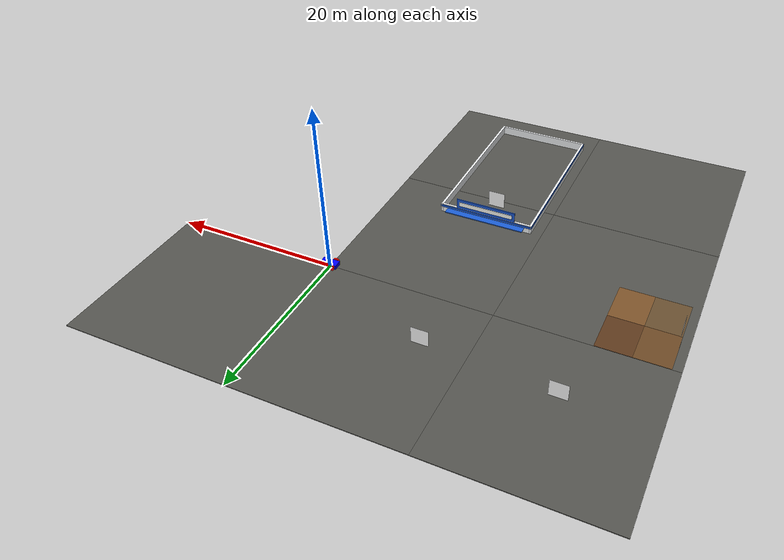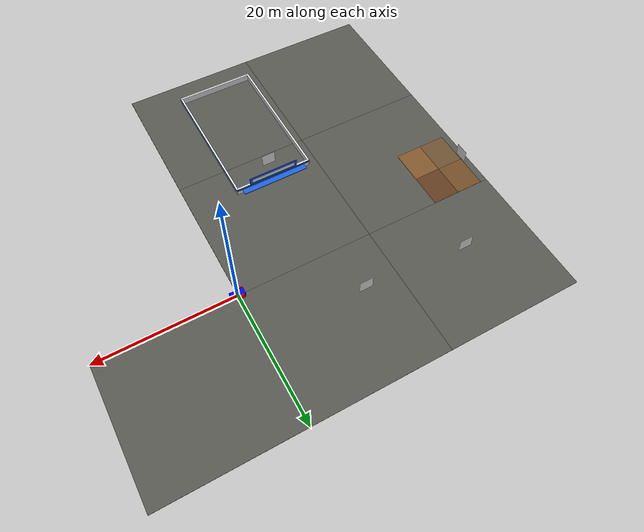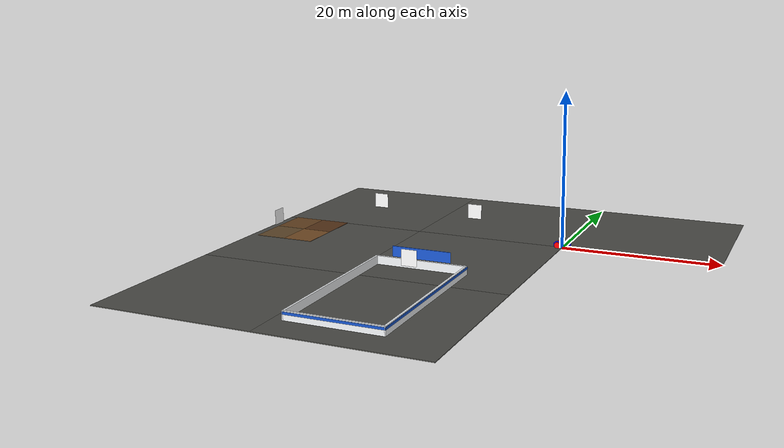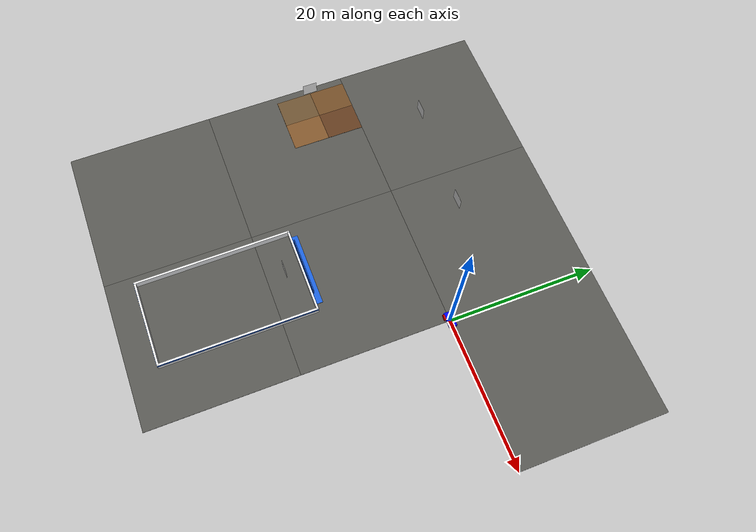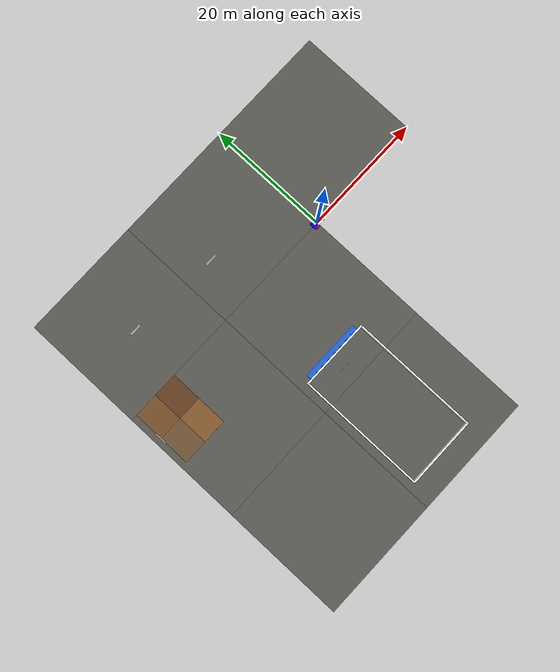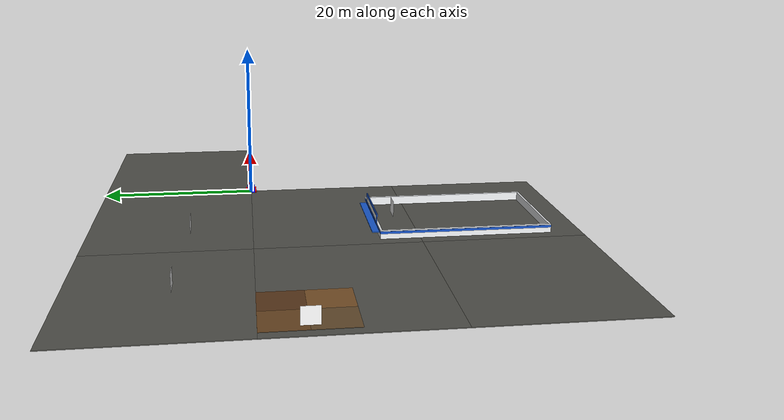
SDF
<sdf version="1.9">
 <world name="default">
  <model name="vehicle_blue" canonical_link="chassis">
   <pose relative_to="world">0.0 0.0 0 0 0 0</pose>
   <frame name="lidar_frame" attached_to="chassis"><pose>0.85 0 0.55 0 0 0</pose></frame>
   <link name="chassis">
    <pose relative_to="__model__">0.0 0.0 0.4 0 0 0</pose>
    <inertial>
     <mass>1.14395</mass>
     <inertia>
      <ixx>0.095329</ixx>
      <ixy>0</ixy>
      <ixz>0</ixz>
      <iyy>0.381317</iyy>
      <iyz>0</iyz>
      <izz>0.476646</izz>
     </inertia>
    </inertial>
    <visual name="visual">
     <geometry><box><size>2.0 1.0 0.5</size></box></geometry>
     <material>
      <ambient>0.0 0.0 1.0 1</ambient>
      <diffuse>0.0 0.0 1.0 1</diffuse>
      <specular>0.0 0.0 1.0 1</specular>
     </material>
    </visual>
    <collision name="collision"><geometry><box><size>2.0 1.0 0.5</size></box></geometry></collision>
    <sensor name="gpu_lidar" type="gpu_lidar">
     <pose relative_to="lidar_frame">0 0 0 0 0 0</pose>
     <topic>scan</topic>
     <update_rate>10</update_rate>
     <ray>
      <scan>
       <horizontal>
        <samples>360</samples>
        <resolution>1</resolution>
        <min_angle>-3.14159</min_angle>
        <max_angle>3.14159</max_angle>
       </horizontal>
       <vertical>
        <samples>1</samples>
        <resolution>0.01</resolution>
        <min_angle>0</min_angle>
        <max_angle>0</max_angle>
       </vertical>
      </scan>
      <range><min>0.08</min><max>30.0</max><resolution>0.01</resolution></range>
     </ray>
     <always_on>1</always_on>
     <visualize>true</visualize>
    </sensor>
    <sensor name="front_cam" type="camera">
     <pose>0.9  0  0.0  0  -0.10  0</pose>
     <update_rate>30</update_rate>
     <camera>
      <horizontal_fov>1.05</horizontal_fov>
      <image><width>1280</width><height>720</height><format>R8G8B8</format></image>
     </camera>
     <always_on>true</always_on>
    </sensor>
    <sensor name="imu_sensor" type="imu">
     <always_on>1</always_on>
     <update_rate>50</update_rate>
     <visualize>true</visualize>
     <topic>imu</topic>
    </sensor>
   </link>
   <link name="left_wheel">
    <pose relative_to="chassis">-0.5 0.6 0 -1.5707 0 0</pose>
    <inertial>
     <mass>1</mass>
     <inertia><ixx>0.043333</ixx><ixy>0</ixy><ixz>0</ixz><iyy>0.043333</iyy><iyz>0</iyz><izz>0.08</izz></inertia>
    </inertial>
    <visual name="visual">
     <geometry><cylinder><radius>0.4</radius><length>0.2</length></cylinder></geometry>
     <material>
      <ambient>1.0 0.0 0.0 1</ambient>
      <diffuse>1.0 0.0 0.0 1</diffuse>
      <specular>1.0 0.0 0.0 1</specular>
     </material>
    </visual>
    <collision name="collision">
     <geometry><cylinder><radius>0.4</radius><length>0.2</length></cylinder></geometry>
    </collision>
   </link>
   <link name="right_wheel">
    <pose relative_to="chassis">-0.5 -0.6 0 -1.5707 0 0</pose>
    <inertial>
     <mass>1</mass>
     <inertia><ixx>0.043333</ixx><ixy>0</ixy><ixz>0</ixz><iyy>0.043333</iyy><iyz>0</iyz><izz>0.08</izz></inertia>
    </inertial>
    <visual name="visual">
     <geometry><cylinder><radius>0.4</radius><length>0.2</length></cylinder></geometry>
     <material>
      <ambient>1.0 0.0 0.0 1</ambient>
      <diffuse>1.0 0.0 0.0 1</diffuse>
      <specular>1.0 0.0 0.0 1</specular>
     </material>
    </visual>
    <collision name="collision">
     <geometry><cylinder><radius>0.4</radius><length>0.2</length></cylinder></geometry>
    </collision>
   </link>
   <frame name="caster_frame" attached_to="chassis"><pose>0.8 0 -0.2 0 0 0</pose></frame>
   <link name="caster">
    <pose relative_to="caster_frame"/>
    <inertial>
     <mass>1</mass>
     <inertia><ixx>0.016</ixx><ixy>0</ixy><ixz>0</ixz><iyy>0.016</iyy><iyz>0</iyz><izz>0.016</izz></inertia>
    </inertial>
    <visual name="visual">
     <geometry><sphere><radius>0.2</radius></sphere></geometry>
     <material>
      <ambient>0.0 1 0.0 1</ambient>
      <diffuse>0.0 1 0.0 1</diffuse>
      <specular>0.0 1 0.0 1</specular>
     </material>
    </visual>
    <collision name="collision"><geometry><sphere><radius>0.2</radius></sphere></geometry></collision>
   </link>
   <joint name="left_wheel_joint" type="revolute">
    <pose relative_to="left_wheel"/>
    <parent>chassis</parent>
    <child>left_wheel</child>
    <axis>
     <xyz expressed_in="__model__">0 1 0</xyz>
     <limit><lower>-1.79769e+308</lower><upper>1.79769e+308</upper></limit>
    </axis>
   </joint>
   <joint name="right_wheel_joint" type="revolute">
    <pose relative_to="right_wheel"/>
    <parent>chassis</parent>
    <child>right_wheel</child>
    <axis>
     <xyz expressed_in="__model__">0 1 0</xyz>
     <limit><lower>-1.79769e+308</lower><upper>1.79769e+308</upper></limit>
    </axis>
   </joint>
   <joint name="caster_wheel" type="ball"><parent>chassis</parent><child>caster</child></joint>
   <plugin filename="gz-sim-diff-drive-system" name="gz::sim::systems::DiffDrive">
    <left_joint>left_wheel_joint</left_joint>
    <right_joint>right_wheel_joint</right_joint>
    <wheel_separation>1.2</wheel_separation>
    <wheel_radius>0.4</wheel_radius>
    <odom_publish_frequency>30.0</odom_publish_frequency>
    <topic>cmd_vel</topic>
    <max_linear_velocity>3.0</max_linear_velocity>
    <max_angular_velocity>3.0</max_angular_velocity>
    <max_linear_acceleration>5.0</max_linear_acceleration>
    <max_angular_acceleration>5.0</max_angular_acceleration>
   </plugin>
   <plugin name="gz::sim::systems::JointStatePublisher" filename="gz-sim-joint-state-publisher-system">
    <publish_rate>50</publish_rate>
   </plugin>
   <plugin filename="ignition-gazebo-sensors-system" name="ignition::gazebo::systems::Sensors">
    <render_engine>ogre2</render_engine>
   </plugin>
  </model>
  <include><name>qr1_docking_station</name><uri>model://qr1</uri><pose>-38.85 -5 1.5 0 1.5708 0</pose></include>
  <include><name>qr2_house_5</name><uri>model://qr2</uri><pose>-30 8.5 1.5 1.5708 0 0</pose></include>
  <include><name>qr3_house_4</name><uri>model://qr3</uri><pose>-15 7.5 1.5 1.5708 0 0</pose></include>
  <include><name>qr8_gas_station</name><uri>model://qr8</uri><pose>-13.3 -17.5 2.0 -1.5708 0 0</pose></include>
  <model name="asphalt_plane">
   <static>1</static>
   <link name="link">
    <collision name="collision"><geometry><box><size>20 20 0.1</size></box></geometry></collision>
    <visual name="visual">
     <cast_shadows>0</cast_shadows>
     <geometry><box><size>20 20 0.1</size></box></geometry>
     <material>
      <ambient>0.18 0.18 0.17 1</ambient>
      <diffuse>0.32 0.32 0.30 1</diffuse>
      <specular>0.05 0.05 0.05 1</specular>
      <emissive>0 0 0 1</emissive>
     </material>
    </visual>
    <velocity_decay><linear>0</linear><angular>0</angular></velocity_decay>
   </link>
   <pose>10 10 0 0 0 0</pose>
  </model>
  <model name="asphalt_plane_1">
   <static>1</static>
   <link name="link">
    <collision name="collision"><geometry><box><size>20 20 0.1</size></box></geometry></collision>
    <visual name="visual">
     <cast_shadows>0</cast_shadows>
     <geometry><box><size>20 20 0.1</size></box></geometry>
     <material>
      <ambient>0.18 0.18 0.17 1</ambient>
      <diffuse>0.32 0.32 0.30 1</diffuse>
      <specular>0.05 0.05 0.05 1</specular>
      <emissive>0 0 0 1</emissive>
     </material>
    </visual>
    <velocity_decay><linear>0</linear><angular>0</angular></velocity_decay>
   </link>
   <pose>-10 10 0 0 0 0</pose>
  </model>
  <model name="asphalt_plane_2">
   <static>1</static>
   <link name="link">
    <collision name="collision"><geometry><box><size>20 20 0.1</size></box></geometry></collision>
    <visual name="visual">
     <cast_shadows>0</cast_shadows>
     <geometry><box><size>20 20 0.1</size></box></geometry>
     <material>
      <ambient>0.18 0.18 0.17 1</ambient>
      <diffuse>0.32 0.32 0.30 1</diffuse>
      <specular>0.05 0.05 0.05 1</specular>
      <emissive>0 0 0 1</emissive>
     </material>
    </visual>
    <velocity_decay><linear>0</linear><angular>0</angular></velocity_decay>
   </link>
   <pose>-10 -10 0 0 0 0</pose>
  </model>
  <model name="asphalt_plane_3">
   <static>1</static>
   <link name="link">
    <collision name="collision"><geometry><box><size>20 20 0.1</size></box></geometry></collision>
    <visual name="visual">
     <cast_shadows>0</cast_shadows>
     <geometry><box><size>20 20 0.1</size></box></geometry>
     <material>
      <ambient>0.18 0.18 0.17 1</ambient>
      <diffuse>0.32 0.32 0.30 1</diffuse>
      <specular>0.05 0.05 0.05 1</specular>
      <emissive>0 0 0 1</emissive>
     </material>
    </visual>
    <velocity_decay><linear>0</linear><angular>0</angular></velocity_decay>
   </link>
   <pose>-10 -30 0 0 0 0</pose>
  </model>
  <model name="asphalt_plane_8">
   <static>1</static>
   <link name="link">
    <collision name="collision"><geometry><box><size>20 20 0.1</size></box></geometry></collision>
    <visual name="visual">
     <cast_shadows>0</cast_shadows>
     <geometry><box><size>20 20 0.1</size></box></geometry>
     <material>
      <ambient>0.18 0.18 0.17 1</ambient>
      <diffuse>0.32 0.32 0.30 1</diffuse>
      <specular>0.05 0.05 0.05 1</specular>
      <emissive>0 0 0 1</emissive>
     </material>
    </visual>
    <velocity_decay><linear>0</linear><angular>0</angular></velocity_decay>
   </link>
   <pose>-30 10 0 0 0 0</pose>
  </model>
  <model name="asphalt_plane_9">
   <static>1</static>
   <link name="link">
    <collision name="collision"><geometry><box><size>20 20 0.1</size></box></geometry></collision>
    <visual name="visual">
     <cast_shadows>0</cast_shadows>
     <geometry><box><size>20 20 0.1</size></box></geometry>
     <material>
      <ambient>0.18 0.18 0.17 1</ambient>
      <diffuse>0.32 0.32 0.30 1</diffuse>
      <specular>0.05 0.05 0.05 1</specular>
      <emissive>0 0 0 1</emissive>
     </material>
    </visual>
    <velocity_decay><linear>0</linear><angular>0</angular></velocity_decay>
   </link>
   <pose>-30 -10 0 0 0 0</pose>
  </model>
  <model name="asphalt_plane_10">
   <static>1</static>
   <link name="link">
    <collision name="collision"><geometry><box><size>20 20 0.1</size></box></geometry></collision>
    <visual name="visual">
     <cast_shadows>0</cast_shadows>
     <geometry><box><size>20 20 0.1</size></box></geometry>
     <material>
      <ambient>0.18 0.18 0.17 1</ambient>
      <diffuse>0.32 0.32 0.30 1</diffuse>
      <specular>0.05 0.05 0.05 1</specular>
      <emissive>0 0 0 1</emissive>
     </material>
    </visual>
    <velocity_decay><linear>0</linear><angular>0</angular></velocity_decay>
   </link>
   <pose>-30 -30 0 0 0 0</pose>
  </model>
  <model name="gas_station_north_wall">
   <static>1</static>
   <pose>-12.8467 -15.2421 0.55 0 0 0</pose>
   <link name="link">
    <collision name="north_wall_collision"><geometry><box><size>11.5 0.25 1.1</size></box></geometry></collision>
    <visual name="north_wall_visual">
     <geometry><box><size>11.5 0.25 1.1</size></box></geometry>
     <material>
      <ambient>0.85 0.86 0.87 1</ambient>
      <diffuse>0.95 0.96 0.97 1</diffuse>
      <specular>0.10 0.10 0.12 1</specular>
      <emissive>0.04 0.04 0.04 1</emissive>
     </material>
    </visual>
    <visual name="supermarket_band">
     <pose>0 0.13 0.30 0 0 0</pose>
     <geometry><box><size>11.6 0.04 0.30</size></box></geometry>
     <material>
      <ambient>0.04 0.18 0.42 1</ambient>
      <diffuse>0.08 0.32 0.78 1</diffuse>
      <specular>0.10 0.18 0.28 1</specular>
      <emissive>0.04 0.10 0.22 1</emissive>
     </material>
    </visual>
    <visual name="supermarket_awning">
     <pose>0 0.55 0.05 0 0 0</pose>
     <geometry><box><size>10.0 0.85 0.12</size></box></geometry>
     <material>
      <ambient>0.04 0.20 0.45 1</ambient>
      <diffuse>0.10 0.36 0.82 1</diffuse>
      <specular>0.10 0.18 0.28 1</specular>
      <emissive>0 0 0 1</emissive>
     </material>
    </visual>
    <visual name="supermarket_sign_panel">
     <pose>0 0.22 1.25 0 0 0</pose>
     <geometry><box><size>7.5 0.10 1.3</size></box></geometry>
     <material>
      <ambient>0.04 0.18 0.42 1</ambient>
      <diffuse>0.10 0.34 0.82 1</diffuse>
      <specular>0.10 0.18 0.28 1</specular>
      <emissive>0.10 0.30 0.65 1</emissive>
     </material>
    </visual>
    <visual name="supermarket_sign_letters">
     <pose>0 0.28 1.25 0 0 0</pose>
     <geometry><box><size>6.8 0.04 0.55</size></box></geometry>
     <material>
      <ambient>0.98 0.98 0.94 1</ambient>
      <diffuse>1.0 1.0 0.97 1</diffuse>
      <specular>0.20 0.20 0.18 1</specular>
      <emissive>0.88 0.88 0.75 1</emissive>
     </material>
    </visual>
   </link>
  </model>
  <model name="gas_station_south_wall">
   <static>1</static>
   <pose>-12.8467 -36.0466 0.55 0 0 0</pose>
   <link name="link">
    <collision name="south_wall_collision"><geometry><box><size>11.5 0.25 1.1</size></box></geometry></collision>
    <visual name="south_wall_visual">
     <geometry><box><size>11.5 0.25 1.1</size></box></geometry>
     <material>
      <ambient>0.85 0.86 0.87 1</ambient>
      <diffuse>0.95 0.96 0.97 1</diffuse>
      <specular>0.10 0.10 0.12 1</specular>
      <emissive>0.04 0.04 0.04 1</emissive>
     </material>
    </visual>
    <visual name="supermarket_band_south">
     <pose>0 -0.13 0.30 0 0 0</pose>
     <geometry><box><size>11.6 0.04 0.30</size></box></geometry>
     <material>
      <ambient>0.04 0.18 0.42 1</ambient>
      <diffuse>0.08 0.32 0.78 1</diffuse>
      <specular>0.10 0.18 0.28 1</specular>
      <emissive>0.02 0.06 0.14 1</emissive>
     </material>
    </visual>
   </link>
  </model>
  <model name="gas_station_east_wall">
   <static>1</static>
   <pose>-7.0967 -25.64435 0.55 0 0 0</pose>
   <link name="link">
    <collision name="east_wall_collision">
     <geometry><box><size>0.25 21.0545 1.1</size></box></geometry>
    </collision>
    <visual name="east_wall_visual">
     <geometry><box><size>0.25 21.0545 1.1</size></box></geometry>
     <material>
      <ambient>0.85 0.86 0.87 1</ambient>
      <diffuse>0.95 0.96 0.97 1</diffuse>
      <specular>0.10 0.10 0.12 1</specular>
      <emissive>0.04 0.04 0.04 1</emissive>
     </material>
    </visual>
    <visual name="supermarket_band_east">
     <pose>0.13 0 0.30 0 0 0</pose>
     <geometry><box><size>0.04 21.1 0.30</size></box></geometry>
     <material>
      <ambient>0.04 0.18 0.42 1</ambient>
      <diffuse>0.08 0.32 0.78 1</diffuse>
      <specular>0.10 0.18 0.28 1</specular>
      <emissive>0.02 0.06 0.14 1</emissive>
     </material>
    </visual>
   </link>
  </model>
  <model name="gas_station_west_wall">
   <static>1</static>
   <pose>-18.5967 -25.64435 0.55 0 0 0</pose>
   <link name="link">
    <collision name="west_wall_collision">
     <geometry><box><size>0.25 21.0545 1.1</size></box></geometry>
    </collision>
    <visual name="west_wall_visual">
     <geometry><box><size>0.25 21.0545 1.1</size></box></geometry>
     <material>
      <ambient>0.85 0.86 0.87 1</ambient>
      <diffuse>0.95 0.96 0.97 1</diffuse>
      <specular>0.10 0.10 0.12 1</specular>
      <emissive>0.04 0.04 0.04 1</emissive>
     </material>
    </visual>
    <visual name="supermarket_band_west">
     <pose>-0.13 0 0.30 0 0 0</pose>
     <geometry><box><size>0.04 21.1 0.30</size></box></geometry>
     <material>
      <ambient>0.04 0.18 0.42 1</ambient>
      <diffuse>0.08 0.32 0.78 1</diffuse>
      <specular>0.10 0.18 0.28 1</specular>
      <emissive>0.02 0.06 0.14 1</emissive>
     </material>
    </visual>
   </link>
  </model>
  <model name="mud_box">
   <static>1</static>
   <link name="link">
    <collision name="collision"><geometry><box><size>8 10 0.2</size></box></geometry></collision>
    <visual name="visual_1">
     <pose>-2 2.5 0 0 0 0</pose>
     <cast_shadows>0</cast_shadows>
     <geometry><box><size>4 5 0.2</size></box></geometry>
     <material>
      <ambient>0.22 0.14 0.07 1</ambient>
      <diffuse>0.42 0.28 0.14 1</diffuse>
      <specular>0.04 0.03 0.02 1</specular>
      <emissive>0 0 0 1</emissive>
     </material>
    </visual>
    <visual name="visual_2">
     <pose>2 2.5 0 0 0 0</pose>
     <cast_shadows>0</cast_shadows>
     <geometry><box><size>4 5 0.2</size></box></geometry>
     <material>
      <ambient>0.18 0.11 0.06 1</ambient>
      <diffuse>0.36 0.22 0.11 1</diffuse>
      <specular>0.04 0.03 0.02 1</specular>
      <emissive>0 0 0 1</emissive>
     </material>
    </visual>
    <visual name="visual_3">
     <pose>2 -2.5 0 0 0 0</pose>
     <cast_shadows>0</cast_shadows>
     <geometry><box><size>4 5 0.2</size></box></geometry>
     <material>
      <ambient>0.24 0.16 0.08 1</ambient>
      <diffuse>0.48 0.32 0.16 1</diffuse>
      <specular>0.04 0.03 0.02 1</specular>
      <emissive>0 0 0 1</emissive>
     </material>
    </visual>
    <visual name="visual_4">
     <pose>-2 -2.5 0 0 0 0</pose>
     <cast_shadows>0</cast_shadows>
     <geometry><box><size>4 5 0.2</size></box></geometry>
     <material>
      <ambient>0.20 0.15 0.09 1</ambient>
      <diffuse>0.40 0.30 0.18 1</diffuse>
      <specular>0.04 0.03 0.02 1</specular>
      <emissive>0 0 0 1</emissive>
     </material>
    </visual>
    <velocity_decay><linear>0</linear><angular>0</angular></velocity_decay>
   </link>
   <pose>-35 -5 0 0 0 0</pose>
  </model>
 </world>
</sdf>
